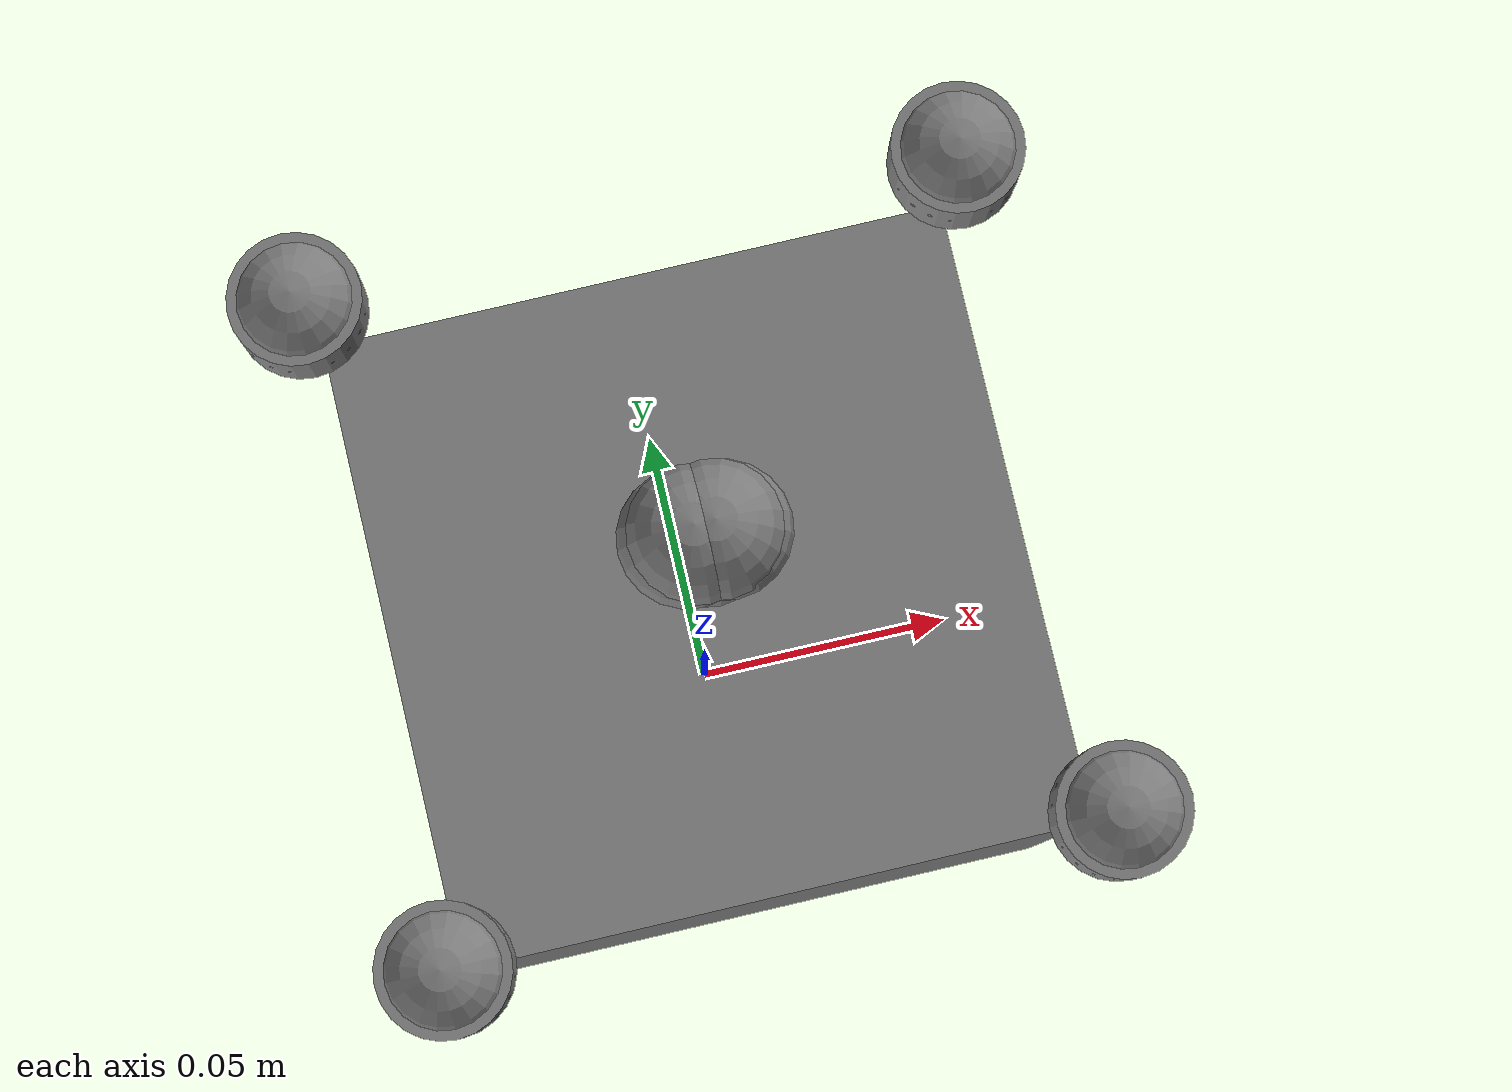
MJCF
<!-- MuJoCo simulation model for a simplified models (Unmanned Aerial Vehicle) -->
<mujoco model="SimpleUAV">
  <compiler inertiafromgeom="true"/>

  <!-- Simulation options including timestep, gravity, solver iterations, integration method -->
  <option timestep="0.01" gravity="0 0 -9.81" iterations="50" integrator="Euler"/>

  <!-- World body definition -->
  <worldbody>
    <!-- Simplified models body represented by a box -->
    <body name="uav" pos="0 0 0.1">
      <freejoint/>
      <geom type="box" size="0.05 0.05 0.05" density="1000"/>

      <!-- Simplified propellers represented by cylinders -->
      <geom type="cylinder" pos="0.05 0.05 0.08" size="0.01 0.005" density="500"/>
      <geom type="cylinder" pos="-0.05 0.05 0.08" size="0.01 0.005" density="500"/>
      <geom type="cylinder" pos="0.05 -0.05 0.08" size="0.01 0.005" density="500"/>
      <geom type="cylinder" pos="-0.05 -0.05 0.08" size="0.01 0.005" density="500"/>

      <!-- Sites for thrust application and sensor attachment -->
      <site name="thrust1" pos="0.05 0.05 0.08" size="0.01"/>
      <site name="thrust2" pos="-0.05 0.05 0.08" size="0.01"/>
      <site name="thrust3" pos="0.05 -0.05 0.08" size="0.01"/>
      <site name="thrust4" pos="-0.05 -0.05 0.08" size="0.01"/>
      <site name="imu" pos="0 0 0.1" size="0.01"/>  <!-- IMU location -->

      <!-- Simplified cameras represented by sites -->
      <site name="light_cam_1" pos="0.0025 0 0.103" size="0.01"/>
      <site name="light_cam_2" pos="-0.0025 0 0.103" size="0.01"/>
      <site name="ir_cam_1" pos="0.0015 0 0.105" size="0.01"/>
      <site name="ir_cam_2" pos="-0.0015 0 0.105" size="0.01"/>
    </body>
  </worldbody>

  <!-- Actuator definitions for controlling propeller thrust -->
  <actuator>
    <motor name="motor1" site="thrust1" ctrllimited="true" ctrlrange="0 10" gear="0 0 1 0 0 0"/>
    <motor name="motor2" site="thrust2" ctrllimited="true" ctrlrange="0 10" gear="0 0 1 0 0 0"/>
    <motor name="motor3" site="thrust3" ctrllimited="true" ctrlrange="0 10" gear="0 0 1 0 0 0"/>
    <motor name="motor4" site="thrust4" ctrllimited="true" ctrlrange="0 10" gear="0 0 1 0 0 0"/>
  </actuator>

  <!-- Sensor definitions for the IMU -->
  <sensor>
    <accelerometer name="imu_accel" site="imu"/>
    <gyro name="imu_gyro" site="imu"/>
  </sensor>
</mujoco>
